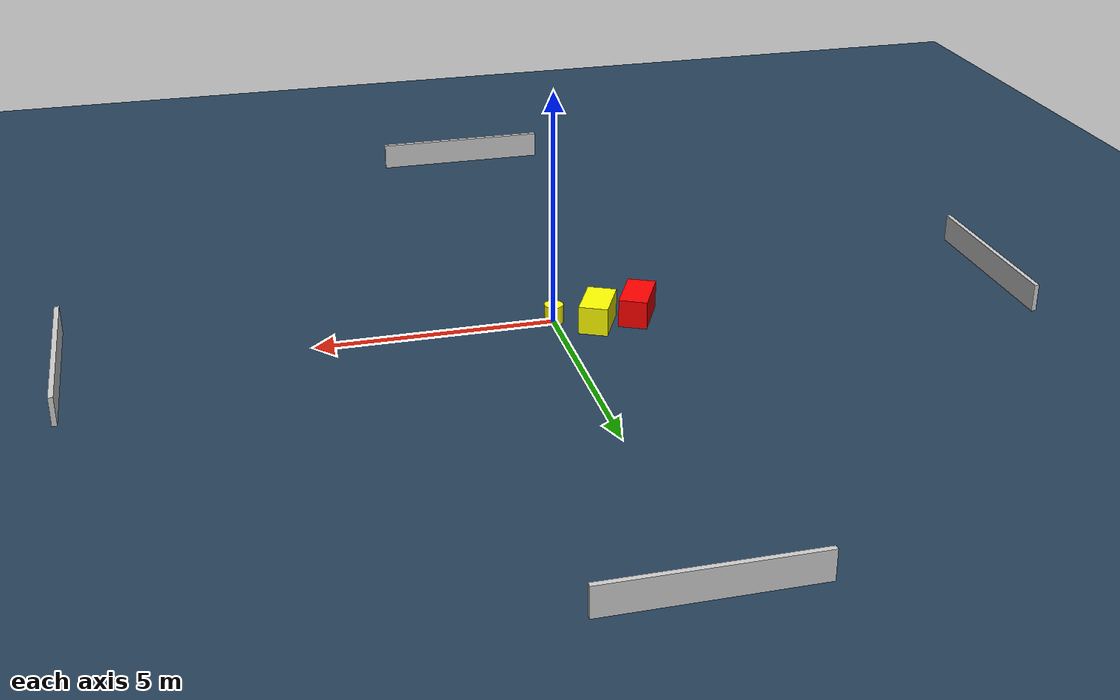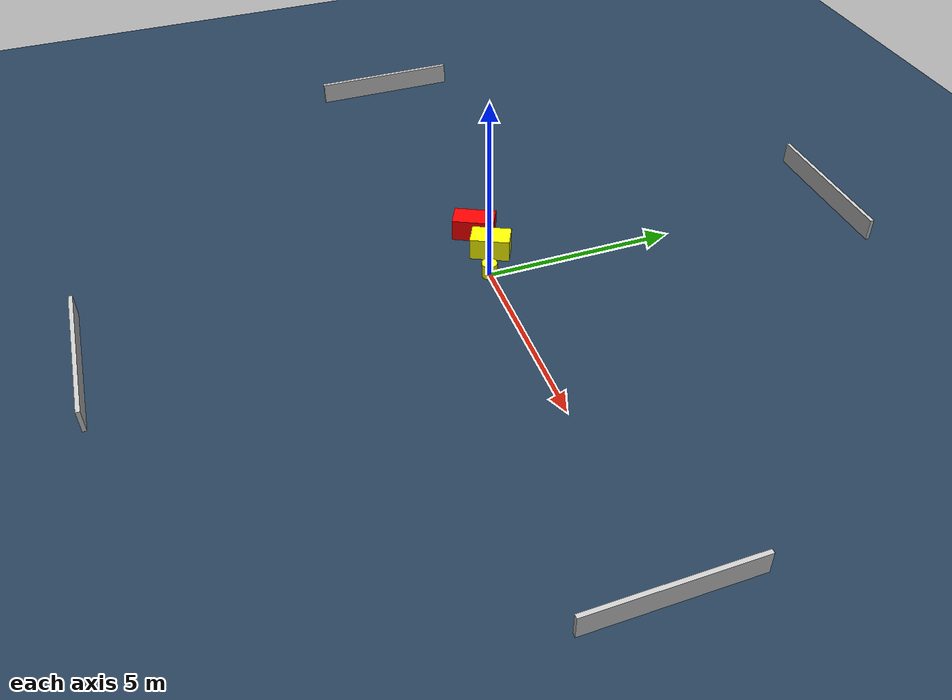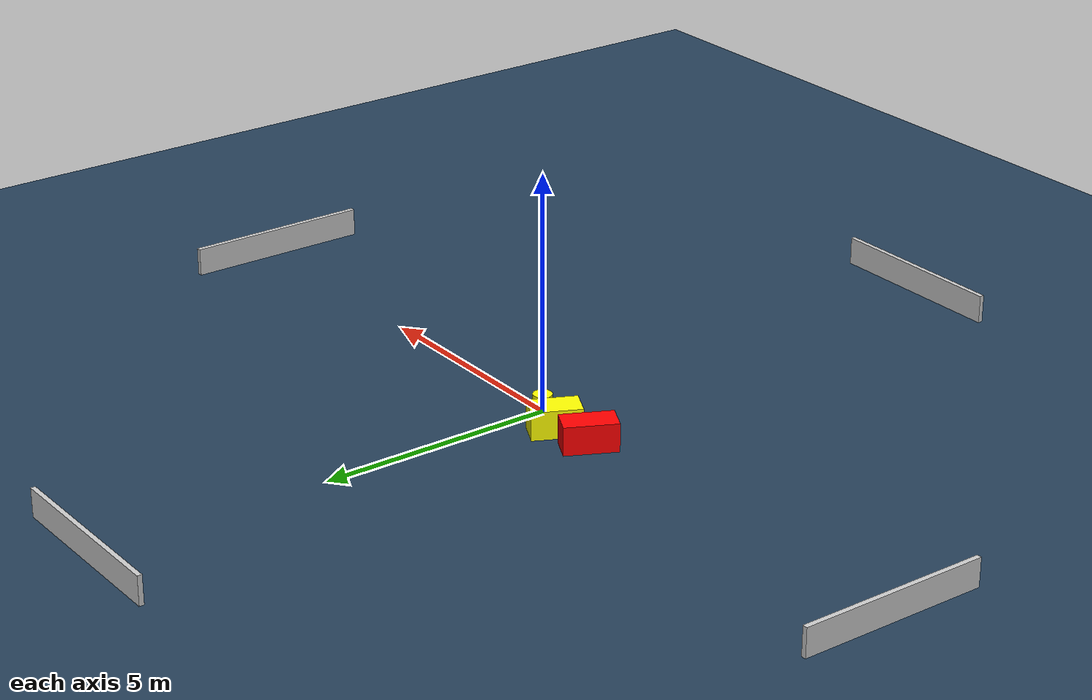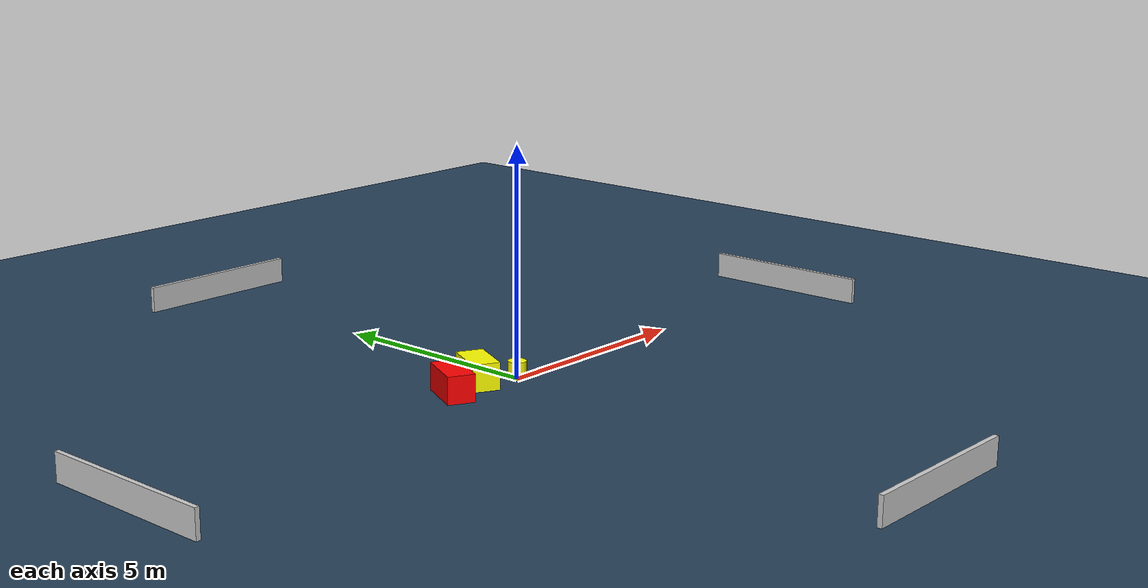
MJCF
<?xml version="1.0" ?>
<mujoco model="generated_environment">
  <option timestep="0.01" integrator="RK4" cone="elliptic"/>
  <default>
    <geom density="1"/>
  </default>
  <asset>
    <texture builtin="gradient" height="3072" name="skybox" rgb1="0.3 0.5 0.7" rgb2="0 0 0" type="skybox" width="512"/>
    <texture builtin="checker" height="300" name="groundplane" rgb1="0.2 0.3 0.4" rgb2="0.1 0.2 0.3" type="2d" width="300"/>
    <material name="groundplane" reflectance="0.2" texrepeat="5 5" texture="groundplane"/>
  </asset>
  <worldbody>
    <light dir="0 0 -1" directional="true" pos="0 0 1.5"/>
    <geom condim="3" friction="0.5 0.005 0.001" material="groundplane" name="floor" pos="0 0 0" size="0 0 0.05" type="plane"/>
    <body name="walls">
      <geom name="wall_1" condim="4" pos="-10.0 0.0 0.3" rgba="0.800000011920929 0.800000011920929 0.800000011920929 1.0" size="0.05 2.0 0.3" type="box"/>
      <geom name="wall_2" condim="4" pos="10.0 0.0 0.3" rgba="0.800000011920929 0.800000011920929 0.800000011920929 1.0" size="0.05 2.0 0.3" type="box"/>
      <geom name="wall_3" condim="4" pos="0.0 -10.0 0.3" rgba="0.800000011920929 0.800000011920929 0.800000011920929 1.0" size="2.0 0.05 0.3" type="box"/>
      <geom name="wall_4" condim="4" pos="0.0 10.0 0.3" rgba="0.800000011920929 0.800000011920929 0.800000011920929 1.0" size="2.0 0.05 0.3" type="box"/>
    </body>
    <body name="robot">
      <joint name="joint_x" type="slide" pos="0 0 0" axis="1 0 0"/>
      <joint name="joint_y" type="slide" pos="0 0 0" axis="0 1 0"/>
      <geom name="robot" type="cylinder" pos="0.0 0.0 0.2" size="0.2 0.2 0.0" mass="5.0" friction="1.0 0.005 0.0001" condim="4" rgba="1.0 1.0 0.0 1.0"/>
    </body>
    <body name="obstacle_1_movable">
      <geom name="obstacle_1_movable" condim="4" pos="-0.8533862406899864 0.34089557669734527 0.3" euler="0 0 333.8208760139089" friction="0.0 0.005 0.001" rgba="1.0 1.0 0.0 1.0" size="0.30460550870994585 0.5151540218785439 0.3" type="box" mass="0.1"/>
      <joint type="free"/>
    </body>
    <body name="obstacle_2_static">
      <geom name="obstacle_2_static" condim="4" pos="-1.7555701918479996 0.19632829018453507 0.3" euler="0 0 63.365508943260146" friction="0.0 0.005 0.001" rgba="1.0 0.0 0.0 1.0" size="0.5524530139360233 0.2988158086687988 0.3" type="box"/>
    </body>
  </worldbody>
  <actuator>
    <motor name="actuator_x" joint="joint_x" gear="1" ctrlrange="-1 1"/>
    <motor name="actuator_y" joint="joint_y" gear="1" ctrlrange="-1 1"/>
  </actuator>
</mujoco>
